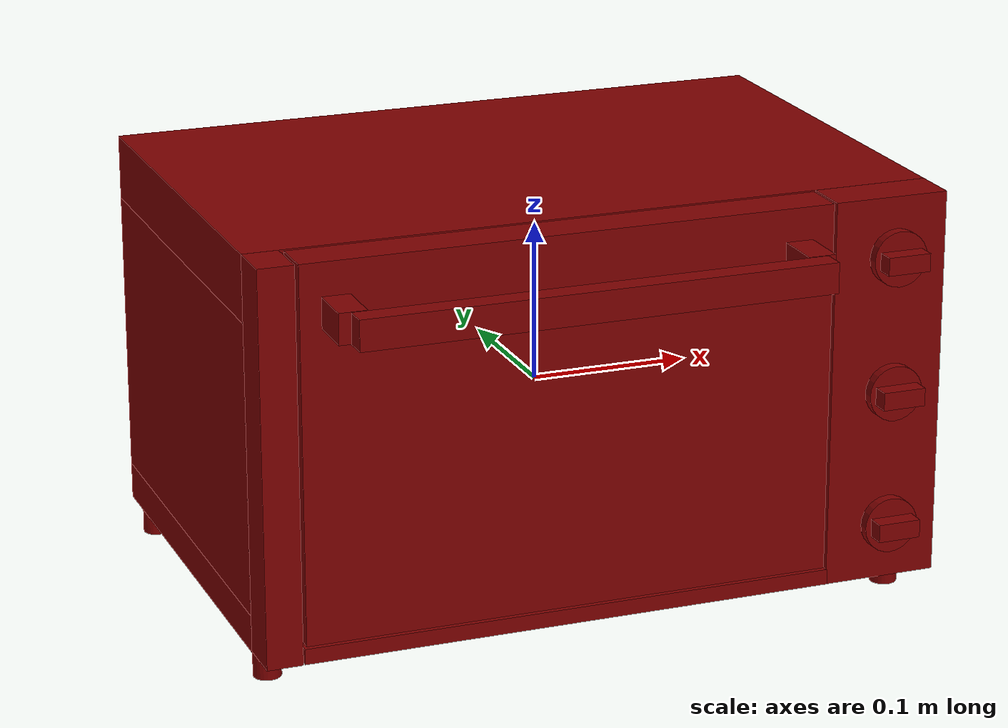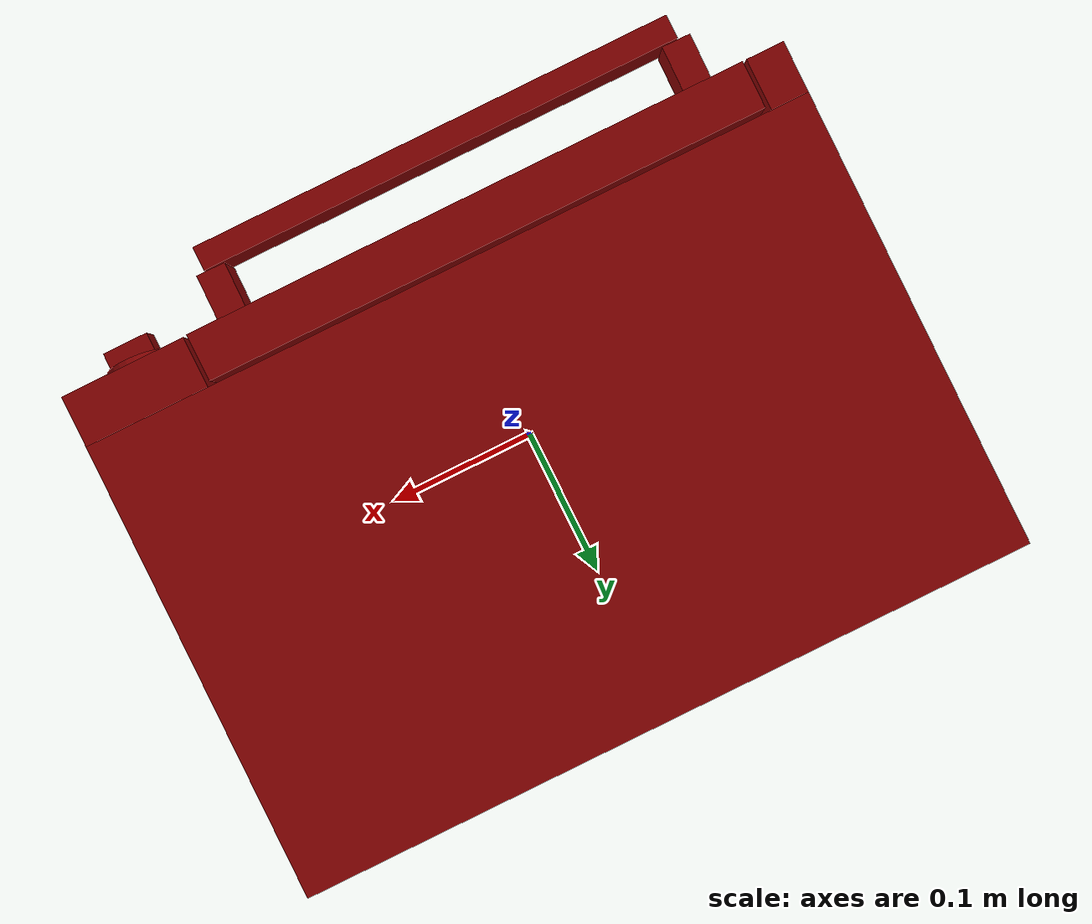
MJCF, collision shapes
<?xml version='1.0' encoding='UTF-8'?>
<mujoco model="model">
  <option timestep="0.002" gravity="0.0 0.0 -9.81"/>
  <compiler angle="radian"/>
  <asset>
    <mesh file="visuals/Body001.obj" name="Body001_vis"/>
    <mesh file="visuals/Door001.obj" name="Door001_vis"/>
    <mesh file="visuals/Door001_Clear.obj" name="Door001_Clear_vis"/>
    <mesh file="visuals/Knob001.obj" name="Knob001_vis"/>
    <mesh file="visuals/Knob002.obj" name="Knob002_vis"/>
    <mesh file="visuals/Knob003.obj" name="Knob003_vis"/>
    <mesh file="visuals/Shelf001.obj" name="Shelf001_vis"/>
    <texture file="visuals/T_BC001.png" name="Body001_material" type="2d"/>
    <material name="Body001_material" rgba="1 1 1 1.0" texture="Body001_material" shininess="0.1" specular="4"/>
    <texture file="visuals/T_BC001.png" name="Door001_material" type="2d"/>
    <material name="Door001_material" rgba="1 1 1 1.0" texture="Door001_material" shininess="0.1" specular="4"/>
    <material name="Door001_Clear_material" rgba="0.031017683446407318 0.031017683446407318 0.031017683446407318 0.800000011920929" shininess="0.4472135901451111" specular="0.3103448502657381"/>
    <texture file="visuals/T_BC001.png" name="Knob001_material" type="2d"/>
    <material name="Knob001_material" rgba="1 1 1 1.0" texture="Knob001_material" shininess="0.1" specular="4"/>
    <texture file="visuals/T_BC001.png" name="Knob002_material" type="2d"/>
    <material name="Knob002_material" rgba="1 1 1 1.0" texture="Knob002_material" shininess="0.1" specular="4"/>
    <texture file="visuals/T_BC001.png" name="Knob003_material" type="2d"/>
    <material name="Knob003_material" rgba="1 1 1 1.0" texture="Knob003_material" shininess="0.1" specular="4"/>
    <texture file="visuals/T_BC001.png" name="Shelf001_material" type="2d"/>
    <material name="Shelf001_material" rgba="1 1 1 1.0" texture="Shelf001_material" shininess="0.1" specular="4"/>
  </asset>
  <default>
    <default class="visual">
      <geom conaffinity="0" contype="0" group="1" type="mesh"/>
    </default>
    <default class="collision">
      <geom group="0" rgba="0.5 0 0 0.5"/>
    </default>
    <default class="spawn">
      <geom group="0" rgba="1 1 1 0.5" contype="0" conaffinity="0"/>
      <site group="0" rgba="1 1 1 0.5"/>
    </default>
    <default class="region">
      <geom group="1" conaffinity="0" contype="0" rgba="0 1 0 0"/>
    </default>
  </default>
  <worldbody>
    <body>
      <body name="object">
        <geom mesh="Body001_vis" type="mesh" solimp="0.998 0.998 0.001" solref="0.001 1" friction="0.95 0.3 0.1" class="visual" material="Body001_material"/>
        <geom class="collision" type="box" pos="-1.1117663234472275e-08 0.038213882595300674 0.11146704107522964" size="0.21495579183101654 0.1343153864145279 0.020544474944472313" quat="1.0 0.0 0.0 0.0" density="1000.0"/>
        <geom class="collision" type="box" pos="-1.1117663234472275e-08 0.038213882595300674 -0.10014694184064865" size="0.21495579183101654 0.1343153864145279 0.011536492966115475" quat="1.0 0.0 0.0 0.0" density="1000.0"/>
        <geom class="collision" type="box" pos="-0.19718171656131744 0.038213882595300674 0.0013687210157513618" size="0.01777409017086029 0.1343153864145279 0.09001322835683823" quat="1.0 0.0 0.0 0.0" density="1000.0"/>
        <geom class="collision" type="box" pos="0.17339937388896942 0.038213882595300674 0.0013687210157513618" size="0.04155641049146652 0.1343153864145279 0.09001322835683823" quat="1.0 0.0 0.0 0.0" density="1000.0"/>
        <geom class="collision" type="box" pos="-0.023536691442131996 0.1631796658039093 0.0009072599932551384" size="0.15547922253608704 0.009349621832370758 0.08971117436885834" quat="1.0 0.0 0.0 0.0" density="1000.0"/>
        <geom class="collision" type="box" pos="0.17874960601329803 -0.11105093359947205 0.010515553876757622" size="0.036206185817718506 0.01479514129459858 0.12149596214294434" quat="1.0 0.0 0.0 0.0" density="1000.0"/>
        <geom class="collision" type="box" pos="-0.20392177999019623 -0.11129484325647354 0.010515553876757622" size="0.011034009978175163 0.015039049088954926 0.12149596214294434" quat="1.0 0.0 0.0 0.0" density="1000.0"/>
        <geom class="collision" type="box" pos="-0.024312153458595276 -0.11116747558116913 -0.1061135083436966" size="0.16738972067832947 0.014911685138940811 0.004866908770054579" quat="1.0 0.0 0.0 0.0" density="1000.0"/>
        <geom class="collision" type="cylinder" pos="-0.20294469594955444 -0.08630774915218353 -0.12149842083454132" size="0.008559237234294415 0.010513102635741234" quat="1.0 0.0 0.0 0.0" density="1000.0"/>
        <geom class="collision" type="cylinder" pos="-0.20294469594955444 0.15876813232898712 -0.12149842083454132" size="0.008559237234294415 0.010513102635741234" quat="1.0 0.0 0.0 0.0" density="1000.0"/>
        <geom class="collision" type="cylinder" pos="0.20214441418647766 0.15876813232898712 -0.12149842083454132" size="0.008559237234294415 0.010513102635741234" quat="1.0 0.0 0.0 0.0" density="1000.0"/>
        <geom class="collision" type="cylinder" pos="0.20214441418647766 -0.08630774915218353 -0.12149842083454132" size="0.008559237234294415 0.010513102635741234" quat="1.0 0.0 0.0 0.0" density="1000.0"/>
        <body name="Door001">
          <joint axis="1.0 0.0 0.0" pos="-0.025415249168872833 -0.12591320276260376 -0.09845322370529175" limited="true" name="Door001_joint" range="0.0 1.5707963267948966" type="hinge" damping="1" frictionloss="1" armature=".01" stiffness="0.05"/>
          <geom mesh="Door001_vis" type="mesh" solimp="0.998 0.998 0.001" solref="0.001 1" friction="0.95 0.3 0.1" class="visual" material="Door001_material"/>
          <geom class="collision" type="box" pos="-0.025143245235085487 -0.11256273090839386 0.016207324340939522" size="0.1654980629682541 0.013771158643066883 0.11580420285463333" quat="1.0 0.0 0.0 0.0" density="1000.0"/>
          <geom class="collision" type="box" pos="-0.024750102311372757 -0.16606825590133667 0.10223766416311264" size="0.14608556032180786 0.007121006026864052 0.00943788979202509" quat="1.0 0.0 0.0 0.0" density="1000.0"/>
          <geom class="collision" type="box" pos="-0.16922050714492798 -0.1422918438911438 0.10223766416311264" size="0.015759708359837532 0.008605112321674824 0.00943788979202509" quat="0.7034296989440918 0.0 -0.0 -0.7107648253440857" density="1000.0"/>
          <geom class="collision" type="box" pos="0.11793724447488785 -0.1422918438911438 0.10223766416311264" size="0.015759708359837532 0.008605112321674824 0.00943788979202509" quat="0.7034296989440918 0.0 -0.0 -0.7107648253440857" density="1000.0"/>
          <body name="Door001_Clear">
            <geom mesh="Door001_Clear_vis" type="mesh" solimp="0.998 0.998 0.001" solref="0.001 1" friction="0.95 0.3 0.1" class="visual" material="Door001_Clear_material"/>
            <geom class="collision" type="box" pos="-0.01777963526546955 -0.11497806012630463 0.007443055510520935" size="0.13938847184181213 0.008377771824598312 0.07047072798013687" quat="1.0 0.0 0.0 0.0" density="1000.0"/>
          </body>
        </body>
        <body name="Knob001">
          <joint axis="0.0 1.0 0.0" pos="0.18226183950901031 -0.13415184617042542 0.09543364495038986" limited="true" name="Knob001_joint" range="0.0 4.71238898038469" type="hinge" damping="0.05" armature="0.001" springref="-0.01"/>
          <geom mesh="Knob001_vis" type="mesh" solimp="0.998 0.998 0.001" solref="0.001 1" friction="0.95 0.3 0.1" class="visual" material="Knob001_material"/>
          <geom class="collision" type="cylinder" pos="0.1819467842578888 -0.13023793697357178 0.0952157974243164" size="0.017327547073364258 0.0034101312048733234" quat="0.7071067094802856 0.7071068286895752 0.0 0.0" density="1000.0"/>
          <geom class="collision" type="box" pos="0.18193583190441132 -0.13924579322338104 0.09510093927383423" size="0.013568618334829807 0.005806437227874994 0.00559975765645504" quat="1.0 0.0 0.0 0.0" density="1000.0"/>
        </body>
        <body name="Knob002">
          <joint axis="0.0 1.0 0.0" pos="0.18226183950901031 -0.13415184617042542 0.010355639271438122" limited="true" name="Knob002_joint" range="0.0 4.71238898038469" type="hinge" damping="0.05" armature="0.001" springref="-0.01"/>
          <geom mesh="Knob002_vis" type="mesh" solimp="0.998 0.998 0.001" solref="0.001 1" friction="0.95 0.3 0.1" class="visual" material="Knob002_material"/>
          <geom class="collision" type="box" pos="0.18193583190441132 -0.13924579322338104 0.01040484756231308" size="0.013568618334829807 0.005806437227874994 0.00559975765645504" quat="1.0 0.0 0.0 0.0" density="1000.0"/>
          <geom class="collision" type="cylinder" pos="0.1819467842578888 -0.13023793697357178 0.010390573181211948" size="0.017327547073364258 0.0034101312048733234" quat="0.7071067094802856 0.7071068286895752 0.0 0.0" density="1000.0"/>
        </body>
        <body name="Knob003">
          <joint axis="0.0 1.0 0.0" pos="0.18226183950901031 -0.13415184617042542 -0.07490671426057816" limited="true" name="Knob003_joint" range="0.0 4.71238898038469" type="hinge" damping="0.05" armature="0.001" springref="-0.01"/>
          <geom mesh="Knob003_vis" type="mesh" solimp="0.998 0.998 0.001" solref="0.001 1" friction="0.95 0.3 0.1" class="visual" material="Knob003_material"/>
          <geom class="collision" type="box" pos="0.18193583190441132 -0.13924579322338104 -0.07463209331035614" size="0.013568618334829807 0.005806437227874994 0.00559975765645504" quat="1.0 0.0 0.0 0.0" density="1000.0"/>
          <geom class="collision" type="cylinder" pos="0.1819467842578888 -0.13023793697357178 -0.07492222636938095" size="0.017327547073364258 0.0034101312048733234" quat="0.7071067094802856 0.7071068286895752 0.0 0.0" density="1000.0"/>
        </body>
        <body name="Shelf001">
          <joint axis="0.0 -1.0 0.0" pos="-0.023016229271888733 0.023355282843112946 0.006173008121550083" limited="true" name="Shelf001_joint" range="0.0 0.2" type="slide" damping="1" frictionloss="1" armature=".01" stiffness="0.05"/>
          <geom mesh="Shelf001_vis" type="mesh" solimp="0.998 0.998 0.001" solref="0.001 1" friction="0.95 0.3 0.1" class="visual" material="Shelf001_material"/>
          <geom class="collision" type="box" pos="-0.02303837612271309 0.023254161700606346 0.00617041764780879" size="0.15459243953227997 0.1112506240606308 0.0010538017377257347" quat="1.0 0.0 0.0 0.0" density="1000.0"/>
        </body>
        <geom class="region" name="reg_int" type="box" pos="-0.02498690038919449 0.028577126562595367 0.0006887577474117279" size="0.1579768881201744 0.12638425081968307 0.09086442366242409"/>
        <geom class="region" name="reg_main" type="box" pos="3.725290298461914e-09 0.023097693920135498 0.0" size="0.21495579183101654 0.14943158626556396 0.1320115178823471"/>
      </body>
    </body>
  </worldbody>
  <actuator>
    <motor name="Door001_joint_actuator" joint="Door001_joint" gear="50"/>
    <motor name="Knob001_joint_actuator" joint="Knob001_joint" gear="50"/>
    <motor name="Knob002_joint_actuator" joint="Knob002_joint" gear="50"/>
    <motor name="Knob003_joint_actuator" joint="Knob003_joint" gear="50"/>
    <motor name="Shelf001_joint_actuator" joint="Shelf001_joint" gear="50"/>
  </actuator>
</mujoco>
